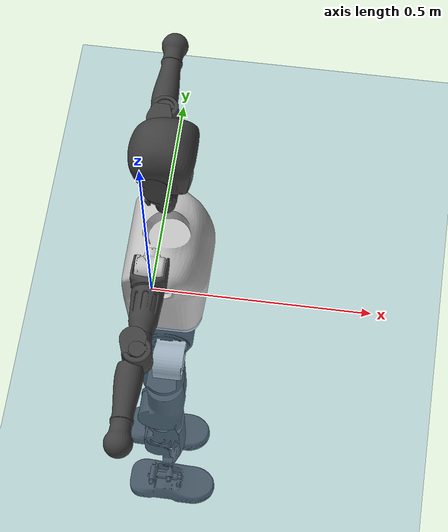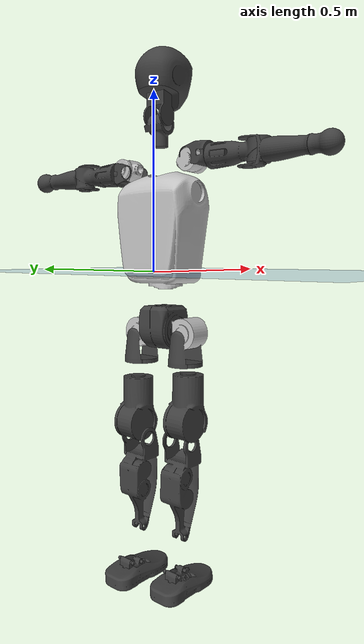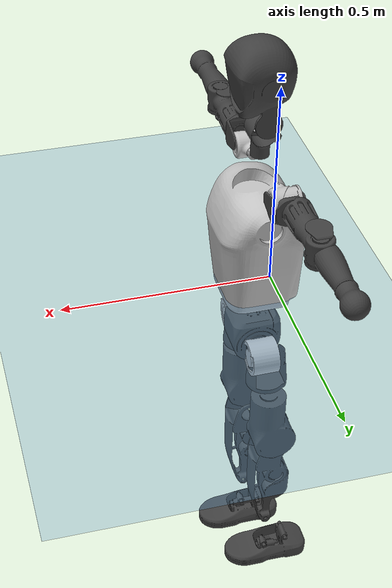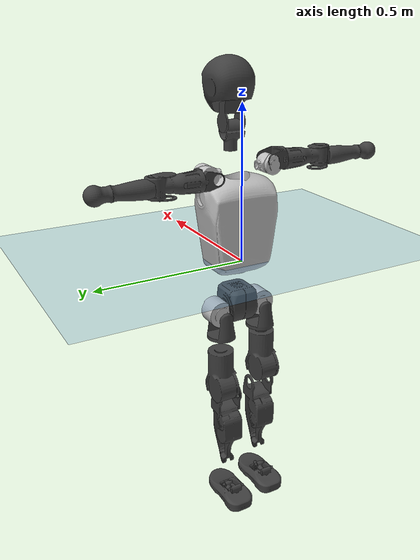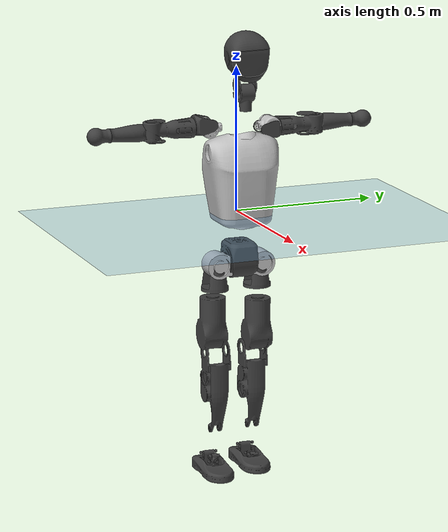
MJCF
<mujoco model="T1">
  <compiler angle="radian" assetdir="assets" balanceinertia="true" inertiafromgeom="false"/>

  <option timestep="0.005" density="1.2" viscosity="2e-05"/>

  <size nkey="1"/>

  <visual>
    <quality shadowsize="8192"/>
    <map shadowclip="0.5"/>
  </visual>

  <default>
    <default class="/">
      <joint armature="0.01" damping="0.01" frictionloss="0.1"/>
      <geom contype="0" conaffinity="0" group="1" solref="-1000 -80"/>
      <site size="0.01 0.005 0.005" group="5"/>
      <general forcelimited="true" biastype="affine" gainprm="25" biasprm="0 -25 -0.6"/>
      <default class="t1">
        <geom rgba="0.25 0.25 0.25 1"/>
        <default class="visual">
          <geom type="mesh" group="2"/>
        </default>
        <default class="collision">
          <geom group="3"/>
        </default>
        <default class="foot">
          <geom size="0.1115 0.05 0.015" type="box" condim="6" group="4" priority="1" solimp="0.015 1 0.015"/>
        </default>
        <default class="reward_collision_sphere">
          <geom group="5" rgba="1 0 0 1"/>
        </default>
      </default>
    </default>
  </default>

  <asset>
    <texture type="skybox" colorspace="auto" name="//unnamed_texture_0" builtin="gradient" rgb1="0.95 0.95 0.95" rgb2="0.95 0.95 0.95" width="100" height="600"/>
    <texture type="2d" colorspace="auto" name="texplane" builtin="checker" rgb1="0.345 0.575 0.748" rgb2="0.345 0.575 0.748" markrgb="1 1 1" width="512" height="512"/>
    <material name="MatPlane" class="/" texture="texplane" texuniform="true" texrepeat="2 2" specular="0.9"/>
    <mesh name="Trunk" class="/" file="Trunk.stl"/>
    <mesh name="H1" class="/" file="H1.stl"/>
    <mesh name="H2" class="/" file="H2.stl"/>
    <mesh name="AL1" class="/" file="AL1.stl"/>
    <mesh name="AL2" class="/" file="AL2.stl"/>
    <mesh name="AL3" class="/" file="AL3.stl"/>
    <mesh name="left_hand_link" class="/" file="left_hand_link.stl"/>
    <mesh name="AR1" class="/" file="AR1.stl"/>
    <mesh name="AR2" class="/" file="AR2.stl"/>
    <mesh name="AR3" class="/" file="AR3.stl"/>
    <mesh name="right_hand_link" class="/" file="right_hand_link.stl"/>
    <mesh name="Waist" class="/" file="Waist.stl"/>
    <mesh name="Hip_Pitch_Left" class="/" file="Hip_Pitch_Left.stl"/>
    <mesh name="Hip_Roll_Left" class="/" file="Hip_Roll_Left.stl"/>
    <mesh name="Hip_Yaw_Left" class="/" file="Hip_Yaw_Left.stl"/>
    <mesh name="Shank_Left" class="/" file="Shank_Left.stl"/>
    <mesh name="Ankle_Cross_Left" class="/" file="Ankle_Cross_Left.stl"/>
    <mesh name="left_foot_link" class="/" file="left_foot_link.stl"/>
    <mesh name="Hip_Pitch_Right" class="/" file="Hip_Pitch_Right.stl"/>
    <mesh name="Hip_Roll_Right" class="/" file="Hip_Roll_Right.stl"/>
    <mesh name="Hip_Yaw_Right" class="/" file="Hip_Yaw_Right.stl"/>
    <mesh name="Shank_Right" class="/" file="Shank_Right.stl"/>
    <mesh name="Ankle_Cross_Right" class="/" file="Ankle_Cross_Right.stl"/>
    <mesh name="right_foot_link" class="/" file="right_foot_link.stl"/>
  </asset>

  <worldbody>
    <geom name="floor" class="/" size="100 100 0.125" type="plane" group="0" material="MatPlane"/>
    <light name="toplight_shadow" class="/" pos="0 0 5" dir="0.0990148 0.0990148 -0.990148" type="directional" ambient="0.04 0.04 0.04" diffuse="0.55 0.55 0.55" specular="0.12 0.12 0.12"/>
    <light name="toplight_fill" class="/" pos="0 0 5" dir="0.0990148 0.0990148 -0.990148" type="directional" castshadow="false" ambient="0.04 0.04 0.04" diffuse="0.3 0.3 0.3" specular="0.08 0.08 0.08"/>
    <body name="trunk" childclass="t1" pos="-0.0108659 0.000138857 0.000980387" quat="0.999997 0.000334581 0.00206072 0.000944729">
      <inertial pos="0.0321287 -0.00239595 0.154554" quat="0.999633 -0.0167277 0.0193655 0.00890147" mass="8.20227" diaginertia="0.00678127 0.0213558 0.265507"/>
      <joint name="//unnamed_joint_0" type="free" armature="0" damping="0" frictionloss="0"/>
      <geom name="//unnamed_geom_1" class="visual" rgba="0.76 0.76 0.76 1" mesh="Trunk"/>
      <geom name="//unnamed_geom_2" class="collision" size="0.0694464 0.0925952 0.138893" pos="0.0369022 0 0.166026" type="box"/>
      <geom name="//unnamed_geom_3" class="reward_collision_sphere" size="0.106484" pos="0.0369022 0 0.138355"/>
      <geom name="//unnamed_geom_4" class="reward_collision_sphere" size="0.0138893" pos="0.0369022 0.066238 0"/>
      <geom name="//unnamed_geom_5" class="reward_collision_sphere" size="0.0138893" pos="0.0369022 -0.066238 0"/>
      <geom name="//unnamed_geom_6" class="reward_collision_sphere" size="0.0138893" pos="0.0369022 0.0833819 0.249039"/>
      <geom name="//unnamed_geom_7" class="reward_collision_sphere" size="0.0138893" pos="0.0369022 -0.0833819 0.249039"/>
      <site name="imu" pos="0.0756309 0.0403602 -0.0588893" size="0.00925952"/>
      <camera name="track" pos="0 -1.55854 0" quat="0.707107 0.707107 0 0" mode="trackcom"/>
      <camera name="ego_camera" pos="0.0750345 0 0.58109" quat="-0.5 -0.5 0.5 0.5"/>
      <body name="H1" pos="0.0550025 0.0155459 0.352722" quat="0.999995 -2.31256e-05 -0.00252593 0.00163588">
        <inertial pos="0.00965597 -0.00214116 0.0881709" quat="0.741586 -0.0816438 -0.0145222 0.665713" mass="0.300377" diaginertia="2.10987e-05 7.8077e-05 0.000777787"/>
        <joint name="AAHead_yaw" pos="0 0 0" axis="0.0683053 -0.028032 0.997271" stiffness="0.000155925" range="-1.52941 1.43552" armature="0.00342789" damping="0" frictionloss="0.0484549"/>
        <geom name="//unnamed_geom_8" class="visual" mesh="H1"/>
        <body name="H2" pos="-0.00721289 0.00102562 0.0857045" quat="0.99998 0.00618657 0.000158628 -0.00157664">
          <inertial pos="0.00376605 0.0169677 0.13775" quat="0.989517 0.112246 -0.0504627 -0.0755659" mass="0.453036" diaginertia="0.00021138 0.000589743 0.00833365"/>
          <joint name="Head_pitch" pos="0 0 0" axis="0.00151997 -0.999999 -0.000706056" stiffness="0.0472801" range="-1.34238 0.373779" armature="0.00465427" damping="0" frictionloss="0.0955691"/>
          <geom name="//unnamed_geom_9" class="visual" mesh="H2"/>
          <geom name="//unnamed_geom_10" class="collision" size="0.0740761" pos="0.00615037 0 0.15219"/>
          <geom name="//unnamed_geom_11" class="reward_collision_sphere" size="0.0833356" pos="0.0123007 0 0.138355"/>
        </body>
      </body>
      <body name="AL1" pos="0.0276186 0.0684489 0.292737" quat="1 -9.13011e-05 4.29935e-05 0.000225261">
        <inertial pos="0.0152953 0.019799 0.0123157" quat="0.499504 0.509425 -0.482927 0.507703" mass="0.329402" diaginertia="9.25851e-05 0.000287567 0.00132774"/>
        <joint name="Left_Shoulder_Pitch" pos="0 0 0" axis="-0.0550996 0.998479 0.00173853" range="-3.47495 1.23772" armature="0.00482194" damping="0.00878279" frictionloss="0.144559"/>
        <geom name="//unnamed_geom_12" class="visual" rgba="0.76 0.76 0.76 1" mesh="AL1"/>
        <body name="AL2" pos="-0.00266521 0.0231417 -0.0109791" quat="0.999993 -0.00180588 0.00287752 0.00164075">
          <inertial pos="0.00226314 0.035157 -0.00930768" quat="0.487922 0.512002 -0.48804 0.511472" mass="0.119551" diaginertia="2.42656e-05 6.44983e-05 0.000823954"/>
          <joint name="Left_Shoulder_Roll" pos="0 0 0" axis="-0.999242 -0.0130658 0.0366811" stiffness="0.0250529" range="-1.79151 2.01934" armature="0.00967798" damping="0" frictionloss="0.108097"/>
          <geom name="//unnamed_geom_13" class="visual" mesh="AL2"/>
          <body name="AL3" pos="-0.0150637 0.0491392 0.000138014" quat="0.999987 -0.000700995 0.00444647 -0.00259346">
            <inertial pos="-0.000801165 0.0610635 -0.0129279" quat="0.732763 0.678668 -0.0232659 0.0438993" mass="0.788335" diaginertia="0.000876708 0.0034302 0.00291118"/>
            <joint name="Left_Elbow_Pitch" pos="0 0 0" axis="0.0102516 -0.999846 -0.0142326" stiffness="0.035206" range="-2.21091 2.00518" armature="0.0152481" damping="0.0501944" frictionloss="0.0979667"/>
            <geom name="//unnamed_geom_14" class="visual" mesh="AL3"/>
            <geom name="//unnamed_geom_15" class="collision" size="0.0277785 0.0694464" pos="0 0.0389635 0" quat="0.707105 0.707108 0 0" type="cylinder"/>
            <geom name="//unnamed_geom_16" class="reward_collision_sphere" size="0.0333343"/>
            <body name="left_hand_link" pos="-0.00726722 0.114724 -0.000101487" quat="0.999982 0.00431236 0.000898554 -0.00418769">
              <inertial pos="-0.0169437 0.0986708 0.00468318" quat="0.710726 0.702542 0.0341153 -0.0118061" mass="0.307724" diaginertia="0.000765337 0.00244561 0.00134088"/>
              <joint name="Left_Elbow_Yaw" pos="0 0 0" axis="0.0348608 -0.0418621 0.998515" range="-2.62572 0.203547" armature="0.00305561" damping="0" frictionloss="0.0345822"/>
              <geom name="//unnamed_geom_17" class="visual" mesh="left_hand_link"/>
              <geom name="//unnamed_geom_18" class="collision" size="0.0277785 0.0810208" pos="0 0.101305 0" quat="0.707105 0.707108 0 0" type="cylinder"/>
              <geom name="//unnamed_geom_19" class="reward_collision_sphere" size="0.0462976"/>
              <geom name="//unnamed_geom_20" class="reward_collision_sphere" size="0.0324083" pos="0 0.0857197 0"/>
              <geom name="//unnamed_geom_21" class="reward_collision_sphere" size="0.0324083" pos="0 0.167543 0"/>
            </body>
          </body>
        </body>
      </body>
      <body name="AR1" pos="0.038748 -0.0685227 0.300092" quat="0.999988 0.00296599 0.0018022 0.00349489">
        <inertial pos="-0.00922928 -0.0417563 0.00106578" quat="0.501425 0.498756 -0.503149 0.496644" mass="0.433892" diaginertia="0.000130371 0.000370743 0.00151044"/>
        <joint name="Right_Shoulder_Pitch" pos="0 0 0" axis="-0.00949814 -0.999854 -0.0141865" range="-1.26298 3.17774" armature="0.00463533" damping="0.0845815" frictionloss="0.138326"/>
        <geom name="//unnamed_geom_22" class="visual" rgba="0.76 0.76 0.76 1" mesh="AR1"/>
        <body name="AR2" pos="0.00282731 -0.0448833 0.0146042" quat="0.999997 0.000544289 -0.0017561 0.00129751">
          <inertial pos="0.01212 -0.0418977 0.0157205" quat="0.512889 0.498297 -0.509515 0.478581" mass="0.10842" diaginertia="3.0545e-05 0.000102284 0.000695461"/>
          <joint name="Right_Shoulder_Roll" pos="0 0 0" axis="-0.999186 0.0403029 0.00162264" stiffness="0.068341" range="-2.06146 1.65082" armature="0.00577821" damping="0" frictionloss="0.101091"/>
          <geom name="//unnamed_geom_23" class="visual" mesh="AR2"/>
          <body name="AR3" pos="0.0018841 -0.0578081 -0.00672468" quat="1 -0.000701194 -4.21182e-05 0.000620823">
            <inertial pos="0.0147633 -0.073742 0.0025787" quat="0.728639 0.683971 -0.0353479 -0.00445302" mass="0.807733" diaginertia="0.00119952 0.00365959 0.00254928"/>
            <joint name="Right_Elbow_Pitch" pos="0 0 0" axis="-0.0402942 0.998957 -0.0214708" stiffness="0.0632811" range="-2.2695 2.48252" armature="0.00940902" damping="0.0288028" frictionloss="0.161786"/>
            <geom name="//unnamed_geom_24" class="visual" mesh="AR3"/>
            <geom name="//unnamed_geom_25" class="collision" size="0.0277785 0.0694464" pos="0 -0.0389635 0" quat="0.707105 0.707108 0 0" type="cylinder"/>
            <geom name="//unnamed_geom_26" class="reward_collision_sphere" size="0.0333343"/>
            <body name="right_hand_link" pos="-0.010651 -0.124477 -0.00473943" quat="1 -0.000530579 1.49991e-05 0.000439165">
              <inertial pos="-0.00271753 -0.0804715 -0.0127098" quat="0.707488 0.706715 0.00336632 -0.00157938" mass="0.274916" diaginertia="0.000703485 0.00287885 0.00126134"/>
              <joint name="Right_Elbow_Yaw" pos="0 0 0" axis="-0.0101591 0.00613475 0.99993" range="-0.204441 2.58224" armature="0.00969554" damping="0.0403834" frictionloss="0.159073"/>
              <geom name="//unnamed_geom_27" class="visual" mesh="right_hand_link"/>
              <geom name="//unnamed_geom_28" class="collision" size="0.0277785 0.0810208" pos="0 -0.101305 0" quat="0.707105 0.707108 0 0" type="cylinder"/>
              <geom name="//unnamed_geom_29" class="reward_collision_sphere" size="0.0462976"/>
              <geom name="//unnamed_geom_30" class="reward_collision_sphere" size="0.0324083" pos="0 -0.0857197 0"/>
              <geom name="//unnamed_geom_31" class="reward_collision_sphere" size="0.0324083" pos="0 -0.167543 0"/>
            </body>
          </body>
        </body>
      </body>
      <body name="Waist" pos="0.0483798 -0.00449979 -0.165732" quat="0.999995 -0.00269012 0.00148646 -3.58203e-05">
        <inertial pos="0.00307706 0.000627494 0.0122225" quat="0.975063 -0.0172984 -0.220126 0.0223099" mass="2.33732" diaginertia="0.000373992 0.00142089 0.0189998"/>
        <joint name="Waist" pos="0 0 0" axis="-0.0310061 0.0548619 0.998012" stiffness="0.00287668" range="-1.36808 1.76956" armature="0.0090891" damping="0.0090079" frictionloss="0.158706"/>
        <geom name="//unnamed_geom_32" class="visual" mesh="Waist"/>
        <body name="Hip_Pitch_Left" pos="-0.000352614 0.0762675 0.0063635" quat="1 0.000460376 -0.000259908 -0.000271492">
          <inertial pos="0.00507957 0.00697629 -0.0323865" quat="0.981091 0.191431 0.00110813 -0.028511" mass="0.837992" diaginertia="0.000184273 0.000363804 0.00533903"/>
          <joint name="Left_Hip_Pitch" pos="0 0 0" axis="-0.0197206 0.999804 -0.00149934" range="-1.66263 1.57612" armature="0.00462211" damping="0" frictionloss="0.0885389"/>
          <geom name="//unnamed_geom_33" class="visual" rgba="0.76 0.76 0.76 1" mesh="Hip_Pitch_Left"/>
          <body name="Hip_Roll_Left" pos="-0.0146558 -0.00548573 -0.031784" quat="0.999977 0.00534303 -0.0025234 -0.00341167">
            <inertial pos="-0.0102059 -0.00139367 -0.0744291" quat="0.702528 -0.0053121 -0.000886153 0.711635" mass="0.423689" diaginertia="0.000220851 0.000525273 0.00295419"/>
            <joint name="Left_Hip_Roll" pos="0 0 0" axis="-0.99778 0.05962 0.0296837" range="-1.87222 0.255966" armature="0.0141216" damping="0.0519683" frictionloss="0.128716"/>
            <geom name="//unnamed_geom_34" class="visual" mesh="Hip_Roll_Left"/>
            <geom name="//unnamed_geom_35" class="reward_collision_sphere" size="0.0509273"/>
            <body name="Hip_Yaw_Left" pos="-0.00974832 0.00653476 -0.123054" quat="0.999976 -0.00532723 -0.00221263 -0.00377257">
              <inertial pos="0.0109807 0.0055942 -0.116837" quat="0.697085 -0.005815 -0.0272928 0.716445" mass="1.84947" diaginertia="0.00193866 0.00752477 0.0134394"/>
              <joint name="Left_Hip_Yaw" pos="0 0 0" axis="0.00245334 0.0309353 -0.999518" stiffness="0.0708157" range="-1.3196 0.728529" armature="0.00921337" damping="0" frictionloss="0.0326716"/>
              <geom name="//unnamed_geom_36" class="visual" mesh="Hip_Yaw_Left"/>
              <geom name="//unnamed_geom_37" class="collision" size="0.0462976 0.0740761" type="cylinder"/>
              <body name="Shank_Left" pos="-0.0136064 -0.0147537 -0.17816" quat="1 -0.000420013 0.000228187 0.000225315">
                <inertial pos="0.0122193 -0.00610026 -0.17864" quat="0.991005 0.0010224 -0.0995865 0.0893943" mass="1.52123" diaginertia="0.00297392 0.00771162 0.00797338"/>
                <joint name="Left_Knee_Pitch" pos="0 0 0" axis="-0.0583218 0.99798 0.0252021" stiffness="0.0175407" range="-0.0142955 2.09642" armature="0.014678" damping="0" frictionloss="0.0221452"/>
                <geom name="//unnamed_geom_38" class="visual" mesh="Shank_Left"/>
                <geom name="//unnamed_geom_39" class="collision" size="0.0462976 0.0694464" pos="0 0 -0.166026" type="cylinder"/>
                <geom name="//unnamed_geom_40" class="reward_collision_sphere" size="0.0601868"/>
                <body name="Ankle_Cross_Left" pos="-0.00259105 0.00325022 -0.395721" quat="0.999999 -0.00126764 0.00105638 0.000441373">
                  <inertial pos="-0.00250013 -0.00520372 -0.00796292" quat="0.454437 0.547039 0.54156 0.448273" mass="0.0507798" diaginertia="2.00619e-06 6.52841e-06 4.75298e-05"/>
                  <joint name="Left_Ankle_Pitch" pos="0 0 0" axis="0.0249614 0.998254 -0.0535356" stiffness="0.0366686" range="-0.864491 0.571019" armature="0.00210745" damping="0.0322169" frictionloss="0.131785"/>
                  <geom name="//unnamed_geom_41" class="visual" mesh="Ankle_Cross_Left"/>
                  <body name="left_foot_link" pos="-0.0161377 -0.00507558 -0.00842605" quat="1 -0.000428795 4.51525e-05 1.77091e-05">
                    <inertial pos="0.0149222 -0.010869 -0.0133012" quat="0.0146806 0.612434 0.00714442 0.790353" mass="0.552931" diaginertia="0.000232475 0.00061192 0.0124271"/>
                    <joint name="Left_Ankle_Roll" pos="0 0 0" axis="-0.999996 -0.000879501 0.00282477" range="-0.640933 0.618781" armature="0.00921101" damping="0.0881606" frictionloss="0.110915"/>
                    <geom name="//unnamed_geom_42" class="visual" mesh="left_foot_link"/>
                    <geom name="left_foot" class="foot" size="0.140327 0.0700885 0.018934" pos="0.00615037 0 -0.0207532"/>
                    <geom name="//unnamed_geom_44" class="reward_collision_sphere" size="0.0481495" pos="0.00615037 0 -0.0207532"/>
                    <geom name="//unnamed_geom_45" class="reward_collision_sphere" size="0.0277785" pos="0.0584285 -0.0179232 -0.0207532"/>
                    <geom name="//unnamed_geom_46" class="reward_collision_sphere" size="0.0277785" pos="-0.0430526 -0.0179232 -0.0207532"/>
                    <site name="left_foot" class="foot" pos="0.00615037 0 -0.0207532" size="0.00925952"/>
                  </body>
                </body>
              </body>
            </body>
          </body>
        </body>
        <body name="Hip_Pitch_Right" pos="0.0105119 -0.0856953 0.0108886" quat="0.999997 -0.00103464 -0.00202709 0.000397276">
          <inertial pos="0.00445867 0.00517802 -0.0114594" quat="0.968715 -0.244735 0.0350423 -0.0216447" mass="0.775509" diaginertia="0.000189669 0.00034363 0.00564923"/>
          <joint name="Right_Hip_Pitch" pos="0 0 0" axis="0.0347173 -0.999154 0.0220411" stiffness="0.0401399" range="-1.23182 1.48966" armature="0.00891348" damping="0" frictionloss="0.161517"/>
          <geom name="//unnamed_geom_47" class="visual" rgba="0.76 0.76 0.76 1" mesh="Hip_Pitch_Right"/>
          <body name="Hip_Roll_Right" pos="-0.0149919 -0.00177785 -0.0343904" quat="1 8.13114e-05 0.000535614 -0.00011543">
            <inertial pos="0.00717402 0.0123135 -0.0869008" quat="0.701069 -0.0321068 -0.0228618 0.712003" mass="0.351022" diaginertia="0.000177028 0.000554501 0.00247644"/>
            <joint name="Right_Hip_Roll" pos="0 0 0" axis="-0.997226 0.0657846 -0.0348164" stiffness="0.0188915" range="-0.203994 1.67636" armature="0.0146578" damping="0.00849185" frictionloss="0.0701623"/>
            <geom name="//unnamed_geom_48" class="visual" mesh="Hip_Roll_Right"/>
            <geom name="//unnamed_geom_49" class="reward_collision_sphere" size="0.0509273"/>
            <body name="Hip_Yaw_Right" pos="0.000544662 -0.00813394 -0.100499" quat="0.999996 0.00198868 -0.000409404 -0.00211499">
              <inertial pos="-0.0136007 -0.0144944 -0.113258" quat="0.76683 -0.015225 -0.0531323 0.639466" mass="1.6976" diaginertia="0.00219496 0.00809165 0.015154"/>
              <joint name="Right_Hip_Yaw" pos="0 0 0" axis="-0.00255089 0.00282422 -0.999993" range="-0.874428 0.883481" armature="0.0108798" damping="0.0296619" frictionloss="0.0907253"/>
              <geom name="//unnamed_geom_50" class="visual" mesh="Hip_Yaw_Right"/>
              <geom name="//unnamed_geom_51" class="collision" size="0.0462976 0.0740761" type="cylinder"/>
              <body name="Shank_Right" pos="-0.0135316 0.014825 -0.198042" quat="1 0.000128443 0.000132581 -0.000329054">
                <inertial pos="0.0119849 -0.0168653 -0.161046" quat="0.999161 -0.0390143 0.00478723 0.0115265" mass="1.12651" diaginertia="0.00341001 0.0108945 0.0104634"/>
                <joint name="Right_Knee_Pitch" pos="0 0 0" axis="0.0055143 -0.999787 0.0198708" range="-2.15256 -0.0445345" armature="0.00869865" damping="0" frictionloss="0.13186"/>
                <geom name="//unnamed_geom_52" class="visual" mesh="Shank_Right"/>
                <geom name="//unnamed_geom_53" class="collision" size="0.0462976 0.0694464" pos="0 0 -0.166026" type="cylinder"/>
                <geom name="//unnamed_geom_54" class="reward_collision_sphere" size="0.0601868"/>
                <body name="Ankle_Cross_Right" pos="0.000169652 -0.0047069 -0.381974" quat="0.999999 0.000665874 0.000742683 -0.000610361">
                  <inertial pos="0.00384263 0.0133383 -0.0172461" quat="0.435939 0.493621 0.599309 0.455108" mass="0.0549208" diaginertia="2.4397e-06 1.0402e-05 6.89253e-05"/>
                  <joint name="Right_Ankle_Pitch" pos="0 0 0" axis="0.058987 -0.998253 -0.00344757" range="-0.529657 0.85427" armature="0.00352427" damping="0.0801356" frictionloss="0.0991706"/>
                  <geom name="//unnamed_geom_55" class="visual" mesh="Ankle_Cross_Right"/>
                  <body name="right_foot_link" pos="-0.00321377 -0.00328638 -0.0307928" quat="1 1.60082e-05 -2.90759e-05 -2.93344e-05">
                    <inertial pos="0.00546075 -0.00751512 -0.0266118" quat="-0.0459336 0.624242 0.0214398 0.779584" mass="0.584582" diaginertia="0.000199248 0.00063356 0.0114682"/>
                    <joint name="Right_Ankle_Roll" pos="0 0 0" axis="-0.999976 -0.00322452 0.00619691" stiffness="0.00387647" range="-0.408809 0.650381" armature="0.0119933" damping="0.0213391" frictionloss="0.143293"/>
                    <geom name="//unnamed_geom_56" class="visual" mesh="right_foot_link"/>
                    <geom name="right_foot" class="foot" size="0.0905382 0.0422601 0.0100964" pos="0.00615037 0 -0.0207532"/>
                    <geom name="//unnamed_geom_58" class="reward_collision_sphere" size="0.0370381"/>
                    <geom name="//unnamed_geom_59" class="reward_collision_sphere" size="0.0277785" pos="0.00615037 0 -0.0207532"/>
                    <geom name="//unnamed_geom_60" class="reward_collision_sphere" size="0.0277785" pos="0.0584285 0.0179232 -0.0207532"/>
                    <geom name="//unnamed_geom_61" class="reward_collision_sphere" size="0.0277785" pos="-0.0430526 0.0179232 -0.0207532"/>
                    <site name="right_foot" class="foot" pos="0.00615037 0 -0.0207532" size="0.00925952"/>
                  </body>
                </body>
              </body>
            </body>
          </body>
        </body>
      </body>
    </body>
  </worldbody>

  <contact>
    <pair class="/" geom1="floor" geom2="left_foot" name="//unnamed_contact_0"/>
    <pair class="/" geom1="floor" geom2="right_foot" name="//unnamed_contact_1"/>
  </contact>

  <actuator>
    <general name="AAHead_yaw" class="/" joint="AAHead_yaw" forcerange="-3.73791 3.73791" gainprm="18.8236" biasprm="0 -18.8236 -0.733675"/>
    <general name="Head_pitch" class="/" joint="Head_pitch" forcerange="-5.29967 5.29967" gainprm="18.8236" biasprm="0 -18.8236 -0.733675"/>
    <general name="Left_Shoulder_Pitch" class="/" joint="Left_Shoulder_Pitch" forcerange="-15.1502 15.1502" gainprm="18.8236" biasprm="0 -18.8236 -0.733675"/>
    <general name="Left_Shoulder_Roll" class="/" joint="Left_Shoulder_Roll" forcerange="-17.8121 17.8121" gainprm="18.8236" biasprm="0 -18.8236 -0.733675"/>
    <general name="Left_Elbow_Pitch" class="/" joint="Left_Elbow_Pitch" forcerange="-9.28911 9.28911" gainprm="18.8236" biasprm="0 -18.8236 -0.733675"/>
    <general name="Left_Elbow_Yaw" class="/" joint="Left_Elbow_Yaw" forcerange="-10.6569 10.6569" gainprm="18.8236" biasprm="0 -18.8236 -0.733675"/>
    <general name="Right_Shoulder_Pitch" class="/" joint="Right_Shoulder_Pitch" forcerange="-21.8345 21.8345" gainprm="18.8236" biasprm="0 -18.8236 -0.733675"/>
    <general name="Right_Shoulder_Roll" class="/" joint="Right_Shoulder_Roll" forcerange="-20.2013 20.2013" gainprm="18.8236" biasprm="0 -18.8236 -0.733675"/>
    <general name="Right_Elbow_Pitch" class="/" joint="Right_Elbow_Pitch" forcerange="-17.2092 17.2092" gainprm="18.8236" biasprm="0 -18.8236 -0.733675"/>
    <general name="Right_Elbow_Yaw" class="/" joint="Right_Elbow_Yaw" forcerange="-13.0793 13.0793" gainprm="18.8236" biasprm="0 -18.8236 -0.733675"/>
    <general name="Waist" class="/" joint="Waist" forcerange="-32.6981 32.6981" gainprm="18.8236" biasprm="0 -18.8236 -0.733675"/>
    <general name="Left_Hip_Pitch" class="/" joint="Left_Hip_Pitch" forcerange="-42.7933 42.7933" gainprm="18.8236" biasprm="0 -18.8236 -0.733675"/>
    <general name="Left_Hip_Roll" class="/" joint="Left_Hip_Roll" forcerange="-23.0242 23.0242" gainprm="18.8236" biasprm="0 -18.8236 -0.733675"/>
    <general name="Left_Hip_Yaw" class="/" joint="Left_Hip_Yaw" forcerange="-40.2752 40.2752" gainprm="18.8236" biasprm="0 -18.8236 -0.733675"/>
    <general name="Left_Knee_Pitch" class="/" joint="Left_Knee_Pitch" forcerange="-36.9308 36.9308" gainprm="18.8236" biasprm="0 -18.8236 -0.733675"/>
    <general name="Left_Ankle_Pitch" class="/" joint="Left_Ankle_Pitch" forcerange="-24.8967 24.8967" gainprm="18.8236" biasprm="0 -18.8236 -0.733675"/>
    <general name="Left_Ankle_Roll" class="/" joint="Left_Ankle_Roll" forcerange="-14.809 14.809" gainprm="18.8236" biasprm="0 -18.8236 -0.733675"/>
    <general name="Right_Hip_Pitch" class="/" joint="Right_Hip_Pitch" forcerange="-46.1698 46.1698" gainprm="18.8236" biasprm="0 -18.8236 -0.733675"/>
    <general name="Right_Hip_Roll" class="/" joint="Right_Hip_Roll" forcerange="-32.2704 32.2704" gainprm="18.8236" biasprm="0 -18.8236 -0.733675"/>
    <general name="Right_Hip_Yaw" class="/" joint="Right_Hip_Yaw" forcerange="-35.0158 35.0158" gainprm="18.8236" biasprm="0 -18.8236 -0.733675"/>
    <general name="Right_Knee_Pitch" class="/" joint="Right_Knee_Pitch" forcerange="-81.0721 81.0721" gainprm="18.8236" biasprm="0 -18.8236 -0.733675"/>
    <general name="Right_Ankle_Pitch" class="/" joint="Right_Ankle_Pitch" forcerange="-28.1242 28.1242" gainprm="18.8236" biasprm="0 -18.8236 -0.733675"/>
    <general name="Right_Ankle_Roll" class="/" joint="Right_Ankle_Roll" forcerange="-10.3492 10.3492" gainprm="18.8236" biasprm="0 -18.8236 -0.733675"/>
  </actuator>

  <sensor>
    <gyro site="imu" name="imu_angular_velocity"/>
    <velocimeter site="imu" name="imu_linear_velocity"/>
    <framelinvel objtype="site" objname="left_foot" name="left_foot_global_linear_velocity"/>
    <framelinvel objtype="site" objname="right_foot" name="right_foot_global_linear_velocity"/>
  </sensor>

  <keyframe>
    <key name="home" qpos="0 0 0.6385 1 0 0 0 0 0 0 1.4 0 -0.4 0 -1.4 0 0.4 0 -0.4 0 0 0.8 -0.4 0 0.4 0 0 -0.8 0.4 0"/>
  </keyframe>
</mujoco>
